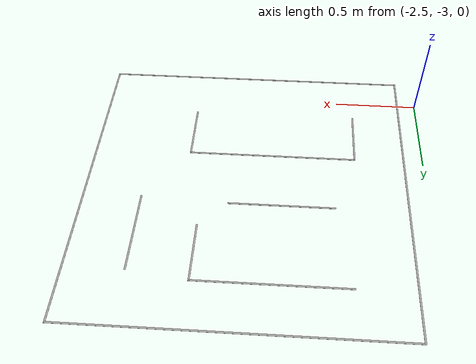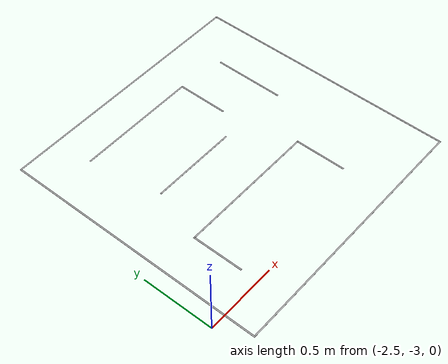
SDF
<?xml version='1.0'?>
<sdf version='1.7'>
  <model name='maze_01'>
    <pose>-1.1975 -1.6075 0 0 -0 0</pose>
    <link name='Wall_0'>
      <collision name='Wall_0_Collision'>
        <geometry>
          <box>
            <size>1.86 0.01 0.001</size>
          </box>
        </geometry>
        <pose>0 0 0.0005 0 -0 0</pose>
      </collision>
      <visual name='Wall_0_Visual'>
        <pose>0 0 0.0005 0 -0 0</pose>
        <geometry>
          <box>
            <size>1.86 0.01 0.001</size>
          </box>
        </geometry>
        <material>
          <script>
            <uri>file://media/materials/scripts/gazebo.material</uri>
            <name>Gazebo/Grey</name>
          </script>
          <ambient>1 1 1 1</ambient>
        </material>
        <meta>
          <layer>0</layer>
        </meta>
      </visual>
      <pose>-0.2675 0.2475 0 0 -0 0</pose>
    </link>
    <link name='Wall_1'>
      <collision name='Wall_1_Collision'>
        <geometry>
          <box>
            <size>1.86 0.01 0.001</size>
          </box>
        </geometry>
        <pose>0 0 0.0005 0 -0 0</pose>
      </collision>
      <visual name='Wall_1_Visual'>
        <pose>0 0 0.0005 0 -0 0</pose>
        <geometry>
          <box>
            <size>1.86 0.01 0.001</size>
          </box>
        </geometry>
        <material>
          <script>
            <uri>file://media/materials/scripts/gazebo.material</uri>
            <name>Gazebo/Grey</name>
          </script>
          <ambient>1 1 1 1</ambient>
        </material>
        <meta>
          <layer>0</layer>
        </meta>
      </visual>
      <pose>0.6575 -0.6775 0 0 -0 -1.5708</pose>
    </link>
    <link name='Wall_10'>
      <collision name='Wall_10_Collision'>
        <geometry>
          <box>
            <size>0.359584 0.01 0.001</size>
          </box>
        </geometry>
        <pose>0 0 0.0005 0 -0 0</pose>
      </collision>
      <visual name='Wall_10_Visual'>
        <pose>0 0 0.0005 0 -0 0</pose>
        <geometry>
          <box>
            <size>0.359584 0.01 0.001</size>
          </box>
        </geometry>
        <material>
          <script>
            <uri>file://media/materials/scripts/gazebo.material</uri>
            <name>Gazebo/Grey</name>
          </script>
          <ambient>1 1 1 1</ambient>
        </material>
        <meta>
          <layer>0</layer>
        </meta>
      </visual>
      <pose>-0.9005 -1.0895 0 0 -0 -1.5708</pose>
    </link>
    <link name='Wall_15'>
      <collision name='Wall_15_Collision'>
        <geometry>
          <box>
            <size>0.36 0.01 0.001</size>
          </box>
        </geometry>
        <pose>0 0 0.0005 0 -0 0</pose>
      </collision>
      <visual name='Wall_15_Visual'>
        <pose>0 0 0.0005 0 -0 0</pose>
        <geometry>
          <box>
            <size>0.36 0.01 0.001</size>
          </box>
        </geometry>
        <material>
          <script>
            <uri>file://media/materials/scripts/gazebo.material</uri>
            <name>Gazebo/Grey</name>
          </script>
          <ambient>1 1 1 1</ambient>
        </material>
        <meta>
          <layer>0</layer>
        </meta>
      </visual>
      <pose>-0.0165 -0.2055 0 0 -0 -1.5708</pose>
    </link>
    <link name='Wall_18'>
      <collision name='Wall_18_Collision'>
        <geometry>
          <box>
            <size>0.495 0.01 0.001</size>
          </box>
        </geometry>
        <pose>0 0 0.0005 0 -0 0</pose>
      </collision>
      <visual name='Wall_18_Visual'>
        <pose>0 0 0.0005 0 -0 0</pose>
        <geometry>
          <box>
            <size>0.495 0.01 0.001</size>
          </box>
        </geometry>
        <material>
          <script>
            <uri>file://media/materials/scripts/gazebo.material</uri>
            <name>Gazebo/Grey</name>
          </script>
          <ambient>1 1 1 1</ambient>
        </material>
        <meta>
          <layer>0</layer>
        </meta>
      </visual>
      <pose>0.3235 -0.319 0 0 -0 -1.5708</pose>
    </link>
    <link name='Wall_2'>
      <collision name='Wall_2_Collision'>
        <geometry>
          <box>
            <size>1.86 0.01 0.001</size>
          </box>
        </geometry>
        <pose>0 0 0.0005 0 -0 0</pose>
      </collision>
      <visual name='Wall_2_Visual'>
        <pose>0 0 0.0005 0 -0 0</pose>
        <geometry>
          <box>
            <size>1.86 0.01 0.001</size>
          </box>
        </geometry>
        <material>
          <script>
            <uri>file://media/materials/scripts/gazebo.material</uri>
            <name>Gazebo/Grey</name>
          </script>
          <ambient>1 1 1 1</ambient>
        </material>
        <meta>
          <layer>0</layer>
        </meta>
      </visual>
      <pose>-0.2675 -1.6025 0 0 -0 3.14159</pose>
    </link>
    <link name='Wall_20'>
      <collision name='Wall_20_Collision'>
        <geometry>
          <box>
            <size>0.609862 0.01 0.001</size>
          </box>
        </geometry>
        <pose>0 0 0.0005 0 -0 0</pose>
      </collision>
      <visual name='Wall_20_Visual'>
        <pose>0 0 0.0005 0 -0 0</pose>
        <geometry>
          <box>
            <size>0.609862 0.01 0.001</size>
          </box>
        </geometry>
        <material>
          <script>
            <uri>file://media/materials/scripts/gazebo.material</uri>
            <name>Gazebo/Grey</name>
          </script>
          <ambient>1 1 1 1</ambient>
        </material>
        <meta>
          <layer>0</layer>
        </meta>
      </visual>
      <pose>-0.4775 -0.5415 0 0 -0 0</pose>
    </link>
    <link name='Wall_25'>
      <collision name='Wall_25_Collision'>
        <geometry>
          <box>
            <size>0.36 0.01 0.001</size>
          </box>
        </geometry>
        <pose>0 0 0.0005 0 -0 0</pose>
      </collision>
      <visual name='Wall_25_Visual'>
        <pose>0 0 0.0005 0 -0 0</pose>
        <geometry>
          <box>
            <size>0.36 0.01 0.001</size>
          </box>
        </geometry>
        <material>
          <script>
            <uri>file://media/materials/scripts/gazebo.material</uri>
            <name>Gazebo/Grey</name>
          </script>
          <ambient>1 1 1 1</ambient>
        </material>
        <meta>
          <layer>0</layer>
        </meta>
      </visual>
      <pose>0.0845 -1.0895 0 0 -0 -1.5708</pose>
    </link>
    <link name='Wall_3'>
      <collision name='Wall_3_Collision'>
        <geometry>
          <box>
            <size>1.86 0.01 0.001</size>
          </box>
        </geometry>
        <pose>0 0 0.0005 0 -0 0</pose>
      </collision>
      <visual name='Wall_3_Visual'>
        <pose>0 0 0.0005 0 -0 0</pose>
        <geometry>
          <box>
            <size>1.86 0.01 0.001</size>
          </box>
        </geometry>
        <material>
          <script>
            <uri>file://media/materials/scripts/gazebo.material</uri>
            <name>Gazebo/Grey</name>
          </script>
          <ambient>1 1 1 1</ambient>
        </material>
        <meta>
          <layer>0</layer>
        </meta>
      </visual>
      <pose>-1.1925 -0.6775 0 0 -0 1.5708</pose>
    </link>
    <link name='Wall_5'>
      <collision name='Wall_5_Collision'>
        <geometry>
          <box>
            <size>0.860061 0.01 0.001</size>
          </box>
        </geometry>
        <pose>0 0 0.0005 0 -0 0</pose>
      </collision>
      <visual name='Wall_5_Visual'>
        <pose>0 0 0.0005 0 -0 0</pose>
        <geometry>
          <box>
            <size>0.860061 0.01 0.001</size>
          </box>
        </geometry>
        <material>
          <script>
            <uri>file://media/materials/scripts/gazebo.material</uri>
            <name>Gazebo/Grey</name>
          </script>
          <ambient>1 1 1 1</ambient>
        </material>
        <meta>
          <layer>0</layer>
        </meta>
      </visual>
      <pose>-0.4415 -0.0305 0 0 -0 0</pose>
    </link>
    <link name='Wall_8'>
      <collision name='Wall_8_Collision'>
        <geometry>
          <box>
            <size>0.995 0.01 0.001</size>
          </box>
        </geometry>
        <pose>0 0 0.0005 0 -0 0</pose>
      </collision>
      <visual name='Wall_8_Visual'>
        <pose>0 0 0.0005 0 -0 0</pose>
        <geometry>
          <box>
            <size>0.995 0.01 0.001</size>
          </box>
        </geometry>
        <material>
          <script>
            <uri>file://media/materials/scripts/gazebo.material</uri>
            <name>Gazebo/Grey</name>
          </script>
          <ambient>1 1 1 1</ambient>
        </material>
        <meta>
          <layer>0</layer>
        </meta>
      </visual>
      <pose>-0.408 -0.9145 0 0 -0 0</pose>
    </link>
    <static>1</static>
  </model>
</sdf>
